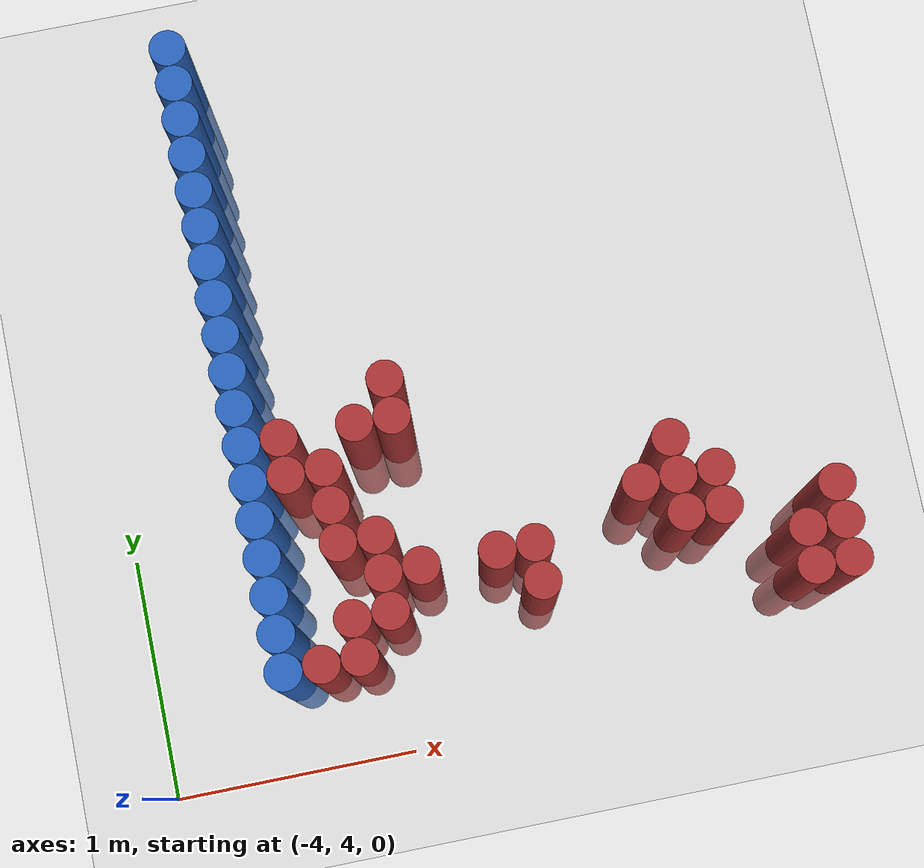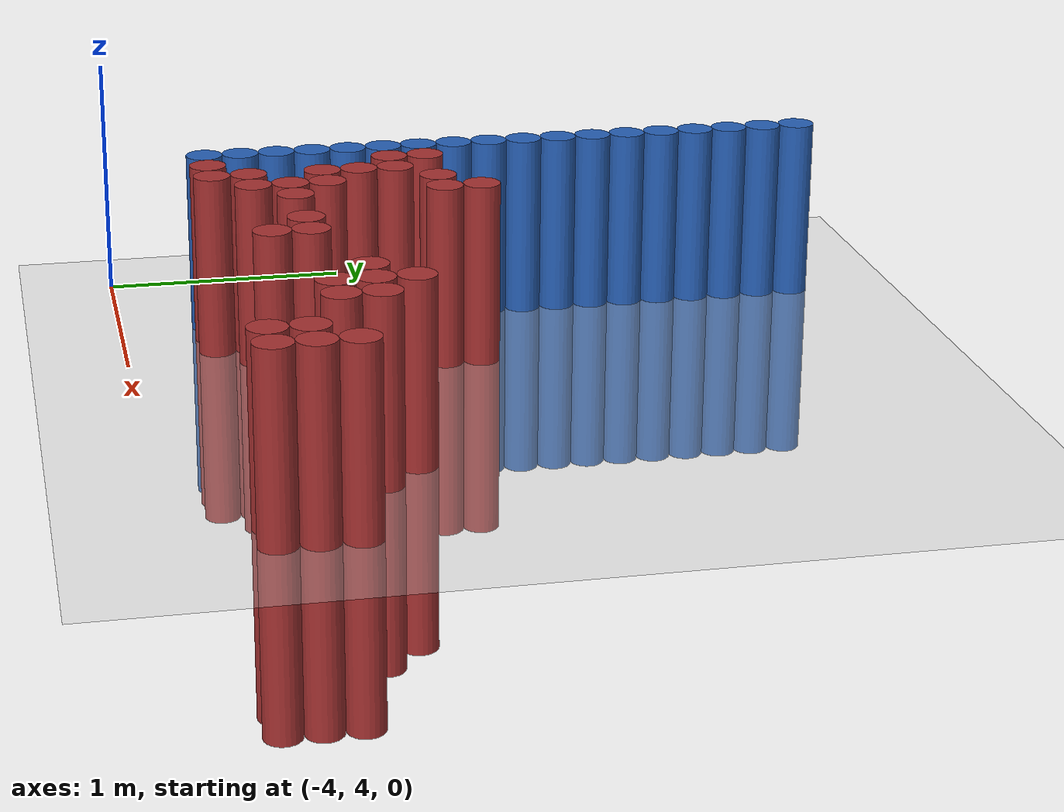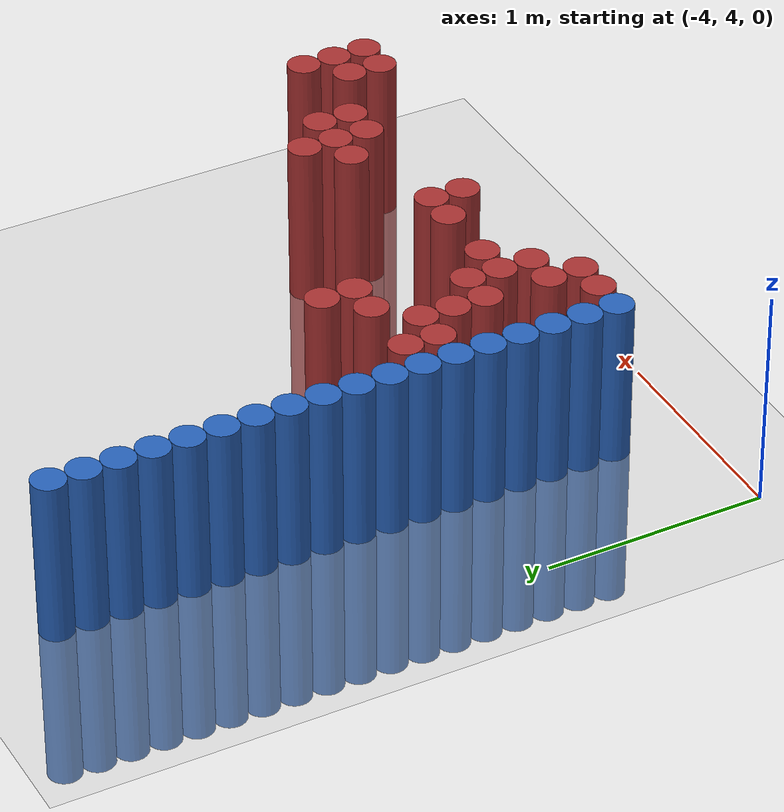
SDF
<sdf version="1.6">
 <world name="default">
  <model name="ground_plane">
   <static>1</static>
   <link name="link">
    <collision name="collision">
     <geometry><plane><normal>0 0 1</normal><size>100 100</size></plane></geometry>
     <surface><friction><ode><mu>100</mu><mu2>50</mu2></ode></friction></surface>
    </collision>
    <visual name="visual">
     <cast_shadows>0</cast_shadows>
     <geometry><plane><normal>0 0 1</normal><size>100 100</size></plane></geometry>
     <material>
      <script><uri>file://media/materials/scripts/gazebo.material</uri><name>Gazebo/Grey</name></script>
     </material>
    </visual>
   </link>
  </model>
  <model name="unit_cylinder_175">
   <static>1</static>
   <pose>-3.425000 4.525000 0.000000 0.000000 0.000000 0.000000</pose>
   <link name="link">
    <inertial>
     <mass>1</mass>
     <inertia><ixx>0.145833</ixx><ixy>0</ixy><ixz>0</ixz><iyy>0.145833</iyy><iyz>0</iyz><izz>0.125</izz></inertia>
    </inertial>
    <collision name="collision">
     <geometry><cylinder><radius>0.075000</radius><length>1.5</length></cylinder></geometry>
    </collision>
    <visual name="visual">
     <geometry><cylinder><radius>0.075000</radius><length>1.5</length></cylinder></geometry>
     <material>
      <ambient>0.152000 0.379000 0.720000 1</ambient>
      <diffuse>0.152000 0.379000 0.720000 1</diffuse>
     </material>
     <material>
      <script><name>Gazebo/Grey</name><uri>file://media/materials/scripts/gazebo.material</uri></script>
     </material>
    </visual>
   </link>
  </model>
  <model name="unit_cylinder_177">
   <static>1</static>
   <pose>-3.425000 4.675000 0.000000 0.000000 0.000000 0.000000</pose>
   <link name="link">
    <inertial>
     <mass>1</mass>
     <inertia><ixx>0.145833</ixx><ixy>0</ixy><ixz>0</ixz><iyy>0.145833</iyy><iyz>0</iyz><izz>0.125</izz></inertia>
    </inertial>
    <collision name="collision">
     <geometry><cylinder><radius>0.075000</radius><length>1.5</length></cylinder></geometry>
    </collision>
    <visual name="visual">
     <geometry><cylinder><radius>0.075000</radius><length>1.5</length></cylinder></geometry>
     <material>
      <ambient>0.152000 0.379000 0.720000 1</ambient>
      <diffuse>0.152000 0.379000 0.720000 1</diffuse>
     </material>
     <material>
      <script><name>Gazebo/Grey</name><uri>file://media/materials/scripts/gazebo.material</uri></script>
     </material>
    </visual>
   </link>
  </model>
  <model name="unit_cylinder_179">
   <static>1</static>
   <pose>-3.425000 4.825000 0.000000 0.000000 0.000000 0.000000</pose>
   <link name="link">
    <inertial>
     <mass>1</mass>
     <inertia><ixx>0.145833</ixx><ixy>0</ixy><ixz>0</ixz><iyy>0.145833</iyy><iyz>0</iyz><izz>0.125</izz></inertia>
    </inertial>
    <collision name="collision">
     <geometry><cylinder><radius>0.075000</radius><length>1.5</length></cylinder></geometry>
    </collision>
    <visual name="visual">
     <geometry><cylinder><radius>0.075000</radius><length>1.5</length></cylinder></geometry>
     <material>
      <ambient>0.152000 0.379000 0.720000 1</ambient>
      <diffuse>0.152000 0.379000 0.720000 1</diffuse>
     </material>
     <material>
      <script><name>Gazebo/Grey</name><uri>file://media/materials/scripts/gazebo.material</uri></script>
     </material>
    </visual>
   </link>
  </model>
  <model name="unit_cylinder_181">
   <static>1</static>
   <pose>-3.425000 4.975000 0.000000 0.000000 0.000000 0.000000</pose>
   <link name="link">
    <inertial>
     <mass>1</mass>
     <inertia><ixx>0.145833</ixx><ixy>0</ixy><ixz>0</ixz><iyy>0.145833</iyy><iyz>0</iyz><izz>0.125</izz></inertia>
    </inertial>
    <collision name="collision">
     <geometry><cylinder><radius>0.075000</radius><length>1.5</length></cylinder></geometry>
    </collision>
    <visual name="visual">
     <geometry><cylinder><radius>0.075000</radius><length>1.5</length></cylinder></geometry>
     <material>
      <ambient>0.152000 0.379000 0.720000 1</ambient>
      <diffuse>0.152000 0.379000 0.720000 1</diffuse>
     </material>
     <material>
      <script><name>Gazebo/Grey</name><uri>file://media/materials/scripts/gazebo.material</uri></script>
     </material>
    </visual>
   </link>
  </model>
  <model name="unit_cylinder_183">
   <static>1</static>
   <pose>-3.425000 5.125000 0.000000 0.000000 0.000000 0.000000</pose>
   <link name="link">
    <inertial>
     <mass>1</mass>
     <inertia><ixx>0.145833</ixx><ixy>0</ixy><ixz>0</ixz><iyy>0.145833</iyy><iyz>0</iyz><izz>0.125</izz></inertia>
    </inertial>
    <collision name="collision">
     <geometry><cylinder><radius>0.075000</radius><length>1.5</length></cylinder></geometry>
    </collision>
    <visual name="visual">
     <geometry><cylinder><radius>0.075000</radius><length>1.5</length></cylinder></geometry>
     <material>
      <ambient>0.152000 0.379000 0.720000 1</ambient>
      <diffuse>0.152000 0.379000 0.720000 1</diffuse>
     </material>
     <material>
      <script><name>Gazebo/Grey</name><uri>file://media/materials/scripts/gazebo.material</uri></script>
     </material>
    </visual>
   </link>
  </model>
  <model name="unit_cylinder_185">
   <static>1</static>
   <pose>-3.425000 5.275000 0.000000 0.000000 0.000000 0.000000</pose>
   <link name="link">
    <inertial>
     <mass>1</mass>
     <inertia><ixx>0.145833</ixx><ixy>0</ixy><ixz>0</ixz><iyy>0.145833</iyy><iyz>0</iyz><izz>0.125</izz></inertia>
    </inertial>
    <collision name="collision">
     <geometry><cylinder><radius>0.075000</radius><length>1.5</length></cylinder></geometry>
    </collision>
    <visual name="visual">
     <geometry><cylinder><radius>0.075000</radius><length>1.5</length></cylinder></geometry>
     <material>
      <ambient>0.152000 0.379000 0.720000 1</ambient>
      <diffuse>0.152000 0.379000 0.720000 1</diffuse>
     </material>
     <material>
      <script><name>Gazebo/Grey</name><uri>file://media/materials/scripts/gazebo.material</uri></script>
     </material>
    </visual>
   </link>
  </model>
  <model name="unit_cylinder_187">
   <static>1</static>
   <pose>-3.425000 5.425000 0.000000 0.000000 0.000000 0.000000</pose>
   <link name="link">
    <inertial>
     <mass>1</mass>
     <inertia><ixx>0.145833</ixx><ixy>0</ixy><ixz>0</ixz><iyy>0.145833</iyy><iyz>0</iyz><izz>0.125</izz></inertia>
    </inertial>
    <collision name="collision">
     <geometry><cylinder><radius>0.075000</radius><length>1.5</length></cylinder></geometry>
    </collision>
    <visual name="visual">
     <geometry><cylinder><radius>0.075000</radius><length>1.5</length></cylinder></geometry>
     <material>
      <ambient>0.152000 0.379000 0.720000 1</ambient>
      <diffuse>0.152000 0.379000 0.720000 1</diffuse>
     </material>
     <material>
      <script><name>Gazebo/Grey</name><uri>file://media/materials/scripts/gazebo.material</uri></script>
     </material>
    </visual>
   </link>
  </model>
  <model name="unit_cylinder_189">
   <static>1</static>
   <pose>-3.425000 5.575000 0.000000 0.000000 0.000000 0.000000</pose>
   <link name="link">
    <inertial>
     <mass>1</mass>
     <inertia><ixx>0.145833</ixx><ixy>0</ixy><ixz>0</ixz><iyy>0.145833</iyy><iyz>0</iyz><izz>0.125</izz></inertia>
    </inertial>
    <collision name="collision">
     <geometry><cylinder><radius>0.075000</radius><length>1.5</length></cylinder></geometry>
    </collision>
    <visual name="visual">
     <geometry><cylinder><radius>0.075000</radius><length>1.5</length></cylinder></geometry>
     <material>
      <ambient>0.152000 0.379000 0.720000 1</ambient>
      <diffuse>0.152000 0.379000 0.720000 1</diffuse>
     </material>
     <material>
      <script><name>Gazebo/Grey</name><uri>file://media/materials/scripts/gazebo.material</uri></script>
     </material>
    </visual>
   </link>
  </model>
  <model name="unit_cylinder_191">
   <static>1</static>
   <pose>-3.425000 5.725000 0.000000 0.000000 0.000000 0.000000</pose>
   <link name="link">
    <inertial>
     <mass>1</mass>
     <inertia><ixx>0.145833</ixx><ixy>0</ixy><ixz>0</ixz><iyy>0.145833</iyy><iyz>0</iyz><izz>0.125</izz></inertia>
    </inertial>
    <collision name="collision">
     <geometry><cylinder><radius>0.075000</radius><length>1.5</length></cylinder></geometry>
    </collision>
    <visual name="visual">
     <geometry><cylinder><radius>0.075000</radius><length>1.5</length></cylinder></geometry>
     <material>
      <ambient>0.152000 0.379000 0.720000 1</ambient>
      <diffuse>0.152000 0.379000 0.720000 1</diffuse>
     </material>
     <material>
      <script><name>Gazebo/Grey</name><uri>file://media/materials/scripts/gazebo.material</uri></script>
     </material>
    </visual>
   </link>
  </model>
  <model name="unit_cylinder_193">
   <static>1</static>
   <pose>-3.425000 5.875000 0.000000 0.000000 0.000000 0.000000</pose>
   <link name="link">
    <inertial>
     <mass>1</mass>
     <inertia><ixx>0.145833</ixx><ixy>0</ixy><ixz>0</ixz><iyy>0.145833</iyy><iyz>0</iyz><izz>0.125</izz></inertia>
    </inertial>
    <collision name="collision">
     <geometry><cylinder><radius>0.075000</radius><length>1.5</length></cylinder></geometry>
    </collision>
    <visual name="visual">
     <geometry><cylinder><radius>0.075000</radius><length>1.5</length></cylinder></geometry>
     <material>
      <ambient>0.152000 0.379000 0.720000 1</ambient>
      <diffuse>0.152000 0.379000 0.720000 1</diffuse>
     </material>
     <material>
      <script><name>Gazebo/Grey</name><uri>file://media/materials/scripts/gazebo.material</uri></script>
     </material>
    </visual>
   </link>
  </model>
  <model name="unit_cylinder_195">
   <static>1</static>
   <pose>-3.425000 6.025000 0.000000 0.000000 0.000000 0.000000</pose>
   <link name="link">
    <inertial>
     <mass>1</mass>
     <inertia><ixx>0.145833</ixx><ixy>0</ixy><ixz>0</ixz><iyy>0.145833</iyy><iyz>0</iyz><izz>0.125</izz></inertia>
    </inertial>
    <collision name="collision">
     <geometry><cylinder><radius>0.075000</radius><length>1.5</length></cylinder></geometry>
    </collision>
    <visual name="visual">
     <geometry><cylinder><radius>0.075000</radius><length>1.5</length></cylinder></geometry>
     <material>
      <ambient>0.152000 0.379000 0.720000 1</ambient>
      <diffuse>0.152000 0.379000 0.720000 1</diffuse>
     </material>
     <material>
      <script><name>Gazebo/Grey</name><uri>file://media/materials/scripts/gazebo.material</uri></script>
     </material>
    </visual>
   </link>
  </model>
  <model name="unit_cylinder_197">
   <static>1</static>
   <pose>-3.425000 6.175000 0.000000 0.000000 0.000000 0.000000</pose>
   <link name="link">
    <inertial>
     <mass>1</mass>
     <inertia><ixx>0.145833</ixx><ixy>0</ixy><ixz>0</ixz><iyy>0.145833</iyy><iyz>0</iyz><izz>0.125</izz></inertia>
    </inertial>
    <collision name="collision">
     <geometry><cylinder><radius>0.075000</radius><length>1.5</length></cylinder></geometry>
    </collision>
    <visual name="visual">
     <geometry><cylinder><radius>0.075000</radius><length>1.5</length></cylinder></geometry>
     <material>
      <ambient>0.152000 0.379000 0.720000 1</ambient>
      <diffuse>0.152000 0.379000 0.720000 1</diffuse>
     </material>
     <material>
      <script><name>Gazebo/Grey</name><uri>file://media/materials/scripts/gazebo.material</uri></script>
     </material>
    </visual>
   </link>
  </model>
  <model name="unit_cylinder_199">
   <static>1</static>
   <pose>-3.425000 6.325000 0.000000 0.000000 0.000000 0.000000</pose>
   <link name="link">
    <inertial>
     <mass>1</mass>
     <inertia><ixx>0.145833</ixx><ixy>0</ixy><ixz>0</ixz><iyy>0.145833</iyy><iyz>0</iyz><izz>0.125</izz></inertia>
    </inertial>
    <collision name="collision">
     <geometry><cylinder><radius>0.075000</radius><length>1.5</length></cylinder></geometry>
    </collision>
    <visual name="visual">
     <geometry><cylinder><radius>0.075000</radius><length>1.5</length></cylinder></geometry>
     <material>
      <ambient>0.152000 0.379000 0.720000 1</ambient>
      <diffuse>0.152000 0.379000 0.720000 1</diffuse>
     </material>
     <material>
      <script><name>Gazebo/Grey</name><uri>file://media/materials/scripts/gazebo.material</uri></script>
     </material>
    </visual>
   </link>
  </model>
  <model name="unit_cylinder_201">
   <static>1</static>
   <pose>-3.425000 6.475000 0.000000 0.000000 0.000000 0.000000</pose>
   <link name="link">
    <inertial>
     <mass>1</mass>
     <inertia><ixx>0.145833</ixx><ixy>0</ixy><ixz>0</ixz><iyy>0.145833</iyy><iyz>0</iyz><izz>0.125</izz></inertia>
    </inertial>
    <collision name="collision">
     <geometry><cylinder><radius>0.075000</radius><length>1.5</length></cylinder></geometry>
    </collision>
    <visual name="visual">
     <geometry><cylinder><radius>0.075000</radius><length>1.5</length></cylinder></geometry>
     <material>
      <ambient>0.152000 0.379000 0.720000 1</ambient>
      <diffuse>0.152000 0.379000 0.720000 1</diffuse>
     </material>
     <material>
      <script><name>Gazebo/Grey</name><uri>file://media/materials/scripts/gazebo.material</uri></script>
     </material>
    </visual>
   </link>
  </model>
  <model name="unit_cylinder_203">
   <static>1</static>
   <pose>-3.425000 6.625000 0.000000 0.000000 0.000000 0.000000</pose>
   <link name="link">
    <inertial>
     <mass>1</mass>
     <inertia><ixx>0.145833</ixx><ixy>0</ixy><ixz>0</ixz><iyy>0.145833</iyy><iyz>0</iyz><izz>0.125</izz></inertia>
    </inertial>
    <collision name="collision">
     <geometry><cylinder><radius>0.075000</radius><length>1.5</length></cylinder></geometry>
    </collision>
    <visual name="visual">
     <geometry><cylinder><radius>0.075000</radius><length>1.5</length></cylinder></geometry>
     <material>
      <ambient>0.152000 0.379000 0.720000 1</ambient>
      <diffuse>0.152000 0.379000 0.720000 1</diffuse>
     </material>
     <material>
      <script><name>Gazebo/Grey</name><uri>file://media/materials/scripts/gazebo.material</uri></script>
     </material>
    </visual>
   </link>
  </model>
  <model name="unit_cylinder_205">
   <static>1</static>
   <pose>-3.425000 6.775000 0.000000 0.000000 0.000000 0.000000</pose>
   <link name="link">
    <inertial>
     <mass>1</mass>
     <inertia><ixx>0.145833</ixx><ixy>0</ixy><ixz>0</ixz><iyy>0.145833</iyy><iyz>0</iyz><izz>0.125</izz></inertia>
    </inertial>
    <collision name="collision">
     <geometry><cylinder><radius>0.075000</radius><length>1.5</length></cylinder></geometry>
    </collision>
    <visual name="visual">
     <geometry><cylinder><radius>0.075000</radius><length>1.5</length></cylinder></geometry>
     <material>
      <ambient>0.152000 0.379000 0.720000 1</ambient>
      <diffuse>0.152000 0.379000 0.720000 1</diffuse>
     </material>
     <material>
      <script><name>Gazebo/Grey</name><uri>file://media/materials/scripts/gazebo.material</uri></script>
     </material>
    </visual>
   </link>
  </model>
  <model name="unit_cylinder_207">
   <static>1</static>
   <pose>-3.425000 6.925000 0.000000 0.000000 0.000000 0.000000</pose>
   <link name="link">
    <inertial>
     <mass>1</mass>
     <inertia><ixx>0.145833</ixx><ixy>0</ixy><ixz>0</ixz><iyy>0.145833</iyy><iyz>0</iyz><izz>0.125</izz></inertia>
    </inertial>
    <collision name="collision">
     <geometry><cylinder><radius>0.075000</radius><length>1.5</length></cylinder></geometry>
    </collision>
    <visual name="visual">
     <geometry><cylinder><radius>0.075000</radius><length>1.5</length></cylinder></geometry>
     <material>
      <ambient>0.152000 0.379000 0.720000 1</ambient>
      <diffuse>0.152000 0.379000 0.720000 1</diffuse>
     </material>
     <material>
      <script><name>Gazebo/Grey</name><uri>file://media/materials/scripts/gazebo.material</uri></script>
     </material>
    </visual>
   </link>
  </model>
  <model name="unit_cylinder_250">
   <static>1</static>
   <pose>-3.425000 4.375000 0.000000 0.000000 0.000000 0.000000</pose>
   <link name="link">
    <inertial>
     <mass>1</mass>
     <inertia><ixx>0.145833</ixx><ixy>0</ixy><ixz>0</ixz><iyy>0.145833</iyy><iyz>0</iyz><izz>0.125</izz></inertia>
    </inertial>
    <collision name="collision">
     <geometry><cylinder><radius>0.075000</radius><length>1.5</length></cylinder></geometry>
    </collision>
    <visual name="visual">
     <geometry><cylinder><radius>0.075000</radius><length>1.5</length></cylinder></geometry>
     <material>
      <ambient>0.152000 0.379000 0.720000 1</ambient>
      <diffuse>0.152000 0.379000 0.720000 1</diffuse>
     </material>
     <material>
      <script><name>Gazebo/Grey</name><uri>file://media/materials/scripts/gazebo.material</uri></script>
     </material>
    </visual>
   </link>
  </model>
  <model name="unit_cylinder_251">
   <static>1</static>
   <pose>-3.425000 4.525000 0.000000 0.000000 0.000000 0.000000</pose>
   <link name="link">
    <inertial>
     <mass>1</mass>
     <inertia><ixx>0.145833</ixx><ixy>0</ixy><ixz>0</ixz><iyy>0.145833</iyy><iyz>0</iyz><izz>0.125</izz></inertia>
    </inertial>
    <collision name="collision">
     <geometry><cylinder><radius>0.075000</radius><length>1.5</length></cylinder></geometry>
    </collision>
    <visual name="visual">
     <geometry><cylinder><radius>0.075000</radius><length>1.5</length></cylinder></geometry>
     <material>
      <ambient>0.152000 0.379000 0.720000 1</ambient>
      <diffuse>0.152000 0.379000 0.720000 1</diffuse>
     </material>
     <material>
      <script><name>Gazebo/Grey</name><uri>file://media/materials/scripts/gazebo.material</uri></script>
     </material>
    </visual>
   </link>
  </model>
  <model name="unit_cylinder_252">
   <static>1</static>
   <pose>-3.425000 4.675000 0.000000 0.000000 0.000000 0.000000</pose>
   <link name="link">
    <inertial>
     <mass>1</mass>
     <inertia><ixx>0.145833</ixx><ixy>0</ixy><ixz>0</ixz><iyy>0.145833</iyy><iyz>0</iyz><izz>0.125</izz></inertia>
    </inertial>
    <collision name="collision">
     <geometry><cylinder><radius>0.075000</radius><length>1.5</length></cylinder></geometry>
    </collision>
    <visual name="visual">
     <geometry><cylinder><radius>0.075000</radius><length>1.5</length></cylinder></geometry>
     <material>
      <ambient>0.152000 0.379000 0.720000 1</ambient>
      <diffuse>0.152000 0.379000 0.720000 1</diffuse>
     </material>
     <material>
      <script><name>Gazebo/Grey</name><uri>file://media/materials/scripts/gazebo.material</uri></script>
     </material>
    </visual>
   </link>
  </model>
  <model name="unit_cylinder_253">
   <static>1</static>
   <pose>-3.425000 4.825000 0.000000 0.000000 0.000000 0.000000</pose>
   <link name="link">
    <inertial>
     <mass>1</mass>
     <inertia><ixx>0.145833</ixx><ixy>0</ixy><ixz>0</ixz><iyy>0.145833</iyy><iyz>0</iyz><izz>0.125</izz></inertia>
    </inertial>
    <collision name="collision">
     <geometry><cylinder><radius>0.075000</radius><length>1.5</length></cylinder></geometry>
    </collision>
    <visual name="visual">
     <geometry><cylinder><radius>0.075000</radius><length>1.5</length></cylinder></geometry>
     <material>
      <ambient>0.152000 0.379000 0.720000 1</ambient>
      <diffuse>0.152000 0.379000 0.720000 1</diffuse>
     </material>
     <material>
      <script><name>Gazebo/Grey</name><uri>file://media/materials/scripts/gazebo.material</uri></script>
     </material>
    </visual>
   </link>
  </model>
  <model name="unit_cylinder_254">
   <static>1</static>
   <pose>-3.425000 4.975000 0.000000 0.000000 0.000000 0.000000</pose>
   <link name="link">
    <inertial>
     <mass>1</mass>
     <inertia><ixx>0.145833</ixx><ixy>0</ixy><ixz>0</ixz><iyy>0.145833</iyy><iyz>0</iyz><izz>0.125</izz></inertia>
    </inertial>
    <collision name="collision">
     <geometry><cylinder><radius>0.075000</radius><length>1.5</length></cylinder></geometry>
    </collision>
    <visual name="visual">
     <geometry><cylinder><radius>0.075000</radius><length>1.5</length></cylinder></geometry>
     <material>
      <ambient>0.152000 0.379000 0.720000 1</ambient>
      <diffuse>0.152000 0.379000 0.720000 1</diffuse>
     </material>
     <material>
      <script><name>Gazebo/Grey</name><uri>file://media/materials/scripts/gazebo.material</uri></script>
     </material>
    </visual>
   </link>
  </model>
  <model name="unit_cylinder_255">
   <static>1</static>
   <pose>-3.425000 5.125000 0.000000 0.000000 0.000000 0.000000</pose>
   <link name="link">
    <inertial>
     <mass>1</mass>
     <inertia><ixx>0.145833</ixx><ixy>0</ixy><ixz>0</ixz><iyy>0.145833</iyy><iyz>0</iyz><izz>0.125</izz></inertia>
    </inertial>
    <collision name="collision">
     <geometry><cylinder><radius>0.075000</radius><length>1.5</length></cylinder></geometry>
    </collision>
    <visual name="visual">
     <geometry><cylinder><radius>0.075000</radius><length>1.5</length></cylinder></geometry>
     <material>
      <ambient>0.152000 0.379000 0.720000 1</ambient>
      <diffuse>0.152000 0.379000 0.720000 1</diffuse>
     </material>
     <material>
      <script><name>Gazebo/Grey</name><uri>file://media/materials/scripts/gazebo.material</uri></script>
     </material>
    </visual>
   </link>
  </model>
  <model name="unit_cylinder_256">
   <static>1</static>
   <pose>-3.425000 5.275000 0.000000 0.000000 0.000000 0.000000</pose>
   <link name="link">
    <inertial>
     <mass>1</mass>
     <inertia><ixx>0.145833</ixx><ixy>0</ixy><ixz>0</ixz><iyy>0.145833</iyy><iyz>0</iyz><izz>0.125</izz></inertia>
    </inertial>
    <collision name="collision">
     <geometry><cylinder><radius>0.075000</radius><length>1.5</length></cylinder></geometry>
    </collision>
    <visual name="visual">
     <geometry><cylinder><radius>0.075000</radius><length>1.5</length></cylinder></geometry>
     <material>
      <ambient>0.152000 0.379000 0.720000 1</ambient>
      <diffuse>0.152000 0.379000 0.720000 1</diffuse>
     </material>
     <material>
      <script><name>Gazebo/Grey</name><uri>file://media/materials/scripts/gazebo.material</uri></script>
     </material>
    </visual>
   </link>
  </model>
  <model name="unit_cylinder_257">
   <static>1</static>
   <pose>-3.425000 5.425000 0.000000 0.000000 0.000000 0.000000</pose>
   <link name="link">
    <inertial>
     <mass>1</mass>
     <inertia><ixx>0.145833</ixx><ixy>0</ixy><ixz>0</ixz><iyy>0.145833</iyy><iyz>0</iyz><izz>0.125</izz></inertia>
    </inertial>
    <collision name="collision">
     <geometry><cylinder><radius>0.075000</radius><length>1.5</length></cylinder></geometry>
    </collision>
    <visual name="visual">
     <geometry><cylinder><radius>0.075000</radius><length>1.5</length></cylinder></geometry>
     <material>
      <ambient>0.152000 0.379000 0.720000 1</ambient>
      <diffuse>0.152000 0.379000 0.720000 1</diffuse>
     </material>
     <material>
      <script><name>Gazebo/Grey</name><uri>file://media/materials/scripts/gazebo.material</uri></script>
     </material>
    </visual>
   </link>
  </model>
  <model name="unit_cylinder_279">
   <static>1</static>
   <pose>-3.275000 4.375000 0.000000 0.000000 0.000000 0.000000</pose>
   <link name="link">
    <inertial>
     <mass>1</mass>
     <inertia><ixx>0.145833</ixx><ixy>0</ixy><ixz>0</ixz><iyy>0.145833</iyy><iyz>0</iyz><izz>0.125</izz></inertia>
    </inertial>
    <collision name="collision">
     <geometry><cylinder><radius>0.075000</radius><length>1.5</length></cylinder></geometry>
    </collision>
    <visual name="visual">
     <geometry><cylinder><radius>0.075000</radius><length>1.5</length></cylinder></geometry>
     <material>
      <ambient>0.648000 0.192000 0.192000 1</ambient>
      <diffuse>0.648000 0.192000 0.192000 1</diffuse>
     </material>
     <material>
      <script><name>Gazebo/Grey</name><uri>file://media/materials/scripts/gazebo.material</uri></script>
     </material>
    </visual>
   </link>
  </model>
  <model name="unit_cylinder_280">
   <static>1</static>
   <pose>-3.275000 5.125000 0.000000 0.000000 0.000000 0.000000</pose>
   <link name="link">
    <inertial>
     <mass>1</mass>
     <inertia><ixx>0.145833</ixx><ixy>0</ixy><ixz>0</ixz><iyy>0.145833</iyy><iyz>0</iyz><izz>0.125</izz></inertia>
    </inertial>
    <collision name="collision">
     <geometry><cylinder><radius>0.075000</radius><length>1.5</length></cylinder></geometry>
    </collision>
    <visual name="visual">
     <geometry><cylinder><radius>0.075000</radius><length>1.5</length></cylinder></geometry>
     <material>
      <ambient>0.648000 0.192000 0.192000 1</ambient>
      <diffuse>0.648000 0.192000 0.192000 1</diffuse>
     </material>
     <material>
      <script><name>Gazebo/Grey</name><uri>file://media/materials/scripts/gazebo.material</uri></script>
     </material>
    </visual>
   </link>
  </model>
  <model name="unit_cylinder_281">
   <static>1</static>
   <pose>-3.275000 5.275000 0.000000 0.000000 0.000000 0.000000</pose>
   <link name="link">
    <inertial>
     <mass>1</mass>
     <inertia><ixx>0.145833</ixx><ixy>0</ixy><ixz>0</ixz><iyy>0.145833</iyy><iyz>0</iyz><izz>0.125</izz></inertia>
    </inertial>
    <collision name="collision">
     <geometry><cylinder><radius>0.075000</radius><length>1.5</length></cylinder></geometry>
    </collision>
    <visual name="visual">
     <geometry><cylinder><radius>0.075000</radius><length>1.5</length></cylinder></geometry>
     <material>
      <ambient>0.648000 0.192000 0.192000 1</ambient>
      <diffuse>0.648000 0.192000 0.192000 1</diffuse>
     </material>
     <material>
      <script><name>Gazebo/Grey</name><uri>file://media/materials/scripts/gazebo.material</uri></script>
     </material>
    </visual>
   </link>
  </model>
  <model name="unit_cylinder_292">
   <static>1</static>
   <pose>-3.125000 4.375000 0.000000 0.000000 0.000000 0.000000</pose>
   <link name="link">
    <inertial>
     <mass>1</mass>
     <inertia><ixx>0.145833</ixx><ixy>0</ixy><ixz>0</ixz><iyy>0.145833</iyy><iyz>0</iyz><izz>0.125</izz></inertia>
    </inertial>
    <collision name="collision">
     <geometry><cylinder><radius>0.075000</radius><length>1.5</length></cylinder></geometry>
    </collision>
    <visual name="visual">
     <geometry><cylinder><radius>0.075000</radius><length>1.5</length></cylinder></geometry>
     <material>
      <ambient>0.648000 0.192000 0.192000 1</ambient>
      <diffuse>0.648000 0.192000 0.192000 1</diffuse>
     </material>
     <material>
      <script><name>Gazebo/Grey</name><uri>file://media/materials/scripts/gazebo.material</uri></script>
     </material>
    </visual>
   </link>
  </model>
  <model name="unit_cylinder_293">
   <static>1</static>
   <pose>-3.125000 4.525000 0.000000 0.000000 0.000000 0.000000</pose>
   <link name="link">
    <inertial>
     <mass>1</mass>
     <inertia><ixx>0.145833</ixx><ixy>0</ixy><ixz>0</ixz><iyy>0.145833</iyy><iyz>0</iyz><izz>0.125</izz></inertia>
    </inertial>
    <collision name="collision">
     <geometry><cylinder><radius>0.075000</radius><length>1.5</length></cylinder></geometry>
    </collision>
    <visual name="visual">
     <geometry><cylinder><radius>0.075000</radius><length>1.5</length></cylinder></geometry>
     <material>
      <ambient>0.648000 0.192000 0.192000 1</ambient>
      <diffuse>0.648000 0.192000 0.192000 1</diffuse>
     </material>
     <material>
      <script><name>Gazebo/Grey</name><uri>file://media/materials/scripts/gazebo.material</uri></script>
     </material>
    </visual>
   </link>
  </model>
  <model name="unit_cylinder_294">
   <static>1</static>
   <pose>-3.125000 4.825000 0.000000 0.000000 0.000000 0.000000</pose>
   <link name="link">
    <inertial>
     <mass>1</mass>
     <inertia><ixx>0.145833</ixx><ixy>0</ixy><ixz>0</ixz><iyy>0.145833</iyy><iyz>0</iyz><izz>0.125</izz></inertia>
    </inertial>
    <collision name="collision">
     <geometry><cylinder><radius>0.075000</radius><length>1.5</length></cylinder></geometry>
    </collision>
    <visual name="visual">
     <geometry><cylinder><radius>0.075000</radius><length>1.5</length></cylinder></geometry>
     <material>
      <ambient>0.648000 0.192000 0.192000 1</ambient>
      <diffuse>0.648000 0.192000 0.192000 1</diffuse>
     </material>
     <material>
      <script><name>Gazebo/Grey</name><uri>file://media/materials/scripts/gazebo.material</uri></script>
     </material>
    </visual>
   </link>
  </model>
  <model name="unit_cylinder_295">
   <static>1</static>
   <pose>-3.125000 4.975000 0.000000 0.000000 0.000000 0.000000</pose>
   <link name="link">
    <inertial>
     <mass>1</mass>
     <inertia><ixx>0.145833</ixx><ixy>0</ixy><ixz>0</ixz><iyy>0.145833</iyy><iyz>0</iyz><izz>0.125</izz></inertia>
    </inertial>
    <collision name="collision">
     <geometry><cylinder><radius>0.075000</radius><length>1.5</length></cylinder></geometry>
    </collision>
    <visual name="visual">
     <geometry><cylinder><radius>0.075000</radius><length>1.5</length></cylinder></geometry>
     <material>
      <ambient>0.648000 0.192000 0.192000 1</ambient>
      <diffuse>0.648000 0.192000 0.192000 1</diffuse>
     </material>
     <material>
      <script><name>Gazebo/Grey</name><uri>file://media/materials/scripts/gazebo.material</uri></script>
     </material>
    </visual>
   </link>
  </model>
  <model name="unit_cylinder_296">
   <static>1</static>
   <pose>-3.125000 5.125000 0.000000 0.000000 0.000000 0.000000</pose>
   <link name="link">
    <inertial>
     <mass>1</mass>
     <inertia><ixx>0.145833</ixx><ixy>0</ixy><ixz>0</ixz><iyy>0.145833</iyy><iyz>0</iyz><izz>0.125</izz></inertia>
    </inertial>
    <collision name="collision">
     <geometry><cylinder><radius>0.075000</radius><length>1.5</length></cylinder></geometry>
    </collision>
    <visual name="visual">
     <geometry><cylinder><radius>0.075000</radius><length>1.5</length></cylinder></geometry>
     <material>
      <ambient>0.648000 0.192000 0.192000 1</ambient>
      <diffuse>0.648000 0.192000 0.192000 1</diffuse>
     </material>
     <material>
      <script><name>Gazebo/Grey</name><uri>file://media/materials/scripts/gazebo.material</uri></script>
     </material>
    </visual>
   </link>
  </model>
  <model name="unit_cylinder_300">
   <static>1</static>
   <pose>-2.975000 4.525000 0.000000 0.000000 0.000000 0.000000</pose>
   <link name="link">
    <inertial>
     <mass>1</mass>
     <inertia><ixx>0.145833</ixx><ixy>0</ixy><ixz>0</ixz><iyy>0.145833</iyy><iyz>0</iyz><izz>0.125</izz></inertia>
    </inertial>
    <collision name="collision">
     <geometry><cylinder><radius>0.075000</radius><length>1.5</length></cylinder></geometry>
    </collision>
    <visual name="visual">
     <geometry><cylinder><radius>0.075000</radius><length>1.5</length></cylinder></geometry>
     <material>
      <ambient>0.648000 0.192000 0.192000 1</ambient>
      <diffuse>0.648000 0.192000 0.192000 1</diffuse>
     </material>
     <material>
      <script><name>Gazebo/Grey</name><uri>file://media/materials/scripts/gazebo.material</uri></script>
     </material>
    </visual>
   </link>
  </model>
  <model name="unit_cylinder_301">
   <static>1</static>
   <pose>-2.975000 4.675000 0.000000 0.000000 0.000000 0.000000</pose>
   <link name="link">
    <inertial>
     <mass>1</mass>
     <inertia><ixx>0.145833</ixx><ixy>0</ixy><ixz>0</ixz><iyy>0.145833</iyy><iyz>0</iyz><izz>0.125</izz></inertia>
    </inertial>
    <collision name="collision">
     <geometry><cylinder><radius>0.075000</radius><length>1.5</length></cylinder></geometry>
    </collision>
    <visual name="visual">
     <geometry><cylinder><radius>0.075000</radius><length>1.5</length></cylinder></geometry>
     <material>
      <ambient>0.648000 0.192000 0.192000 1</ambient>
      <diffuse>0.648000 0.192000 0.192000 1</diffuse>
     </material>
     <material>
      <script><name>Gazebo/Grey</name><uri>file://media/materials/scripts/gazebo.material</uri></script>
     </material>
    </visual>
   </link>
  </model>
  <model name="unit_cylinder_302">
   <static>1</static>
   <pose>-2.975000 4.825000 0.000000 0.000000 0.000000 0.000000</pose>
   <link name="link">
    <inertial>
     <mass>1</mass>
     <inertia><ixx>0.145833</ixx><ixy>0</ixy><ixz>0</ixz><iyy>0.145833</iyy><iyz>0</iyz><izz>0.125</izz></inertia>
    </inertial>
    <collision name="collision">
     <geometry><cylinder><radius>0.075000</radius><length>1.5</length></cylinder></geometry>
    </collision>
    <visual name="visual">
     <geometry><cylinder><radius>0.075000</radius><length>1.5</length></cylinder></geometry>
     <material>
      <ambient>0.648000 0.192000 0.192000 1</ambient>
      <diffuse>0.648000 0.192000 0.192000 1</diffuse>
     </material>
     <material>
      <script><name>Gazebo/Grey</name><uri>file://media/materials/scripts/gazebo.material</uri></script>
     </material>
    </visual>
   </link>
  </model>
  <model name="unit_cylinder_303">
   <static>1</static>
   <pose>-2.975000 5.275000 0.000000 0.000000 0.000000 0.000000</pose>
   <link name="link">
    <inertial>
     <mass>1</mass>
     <inertia><ixx>0.145833</ixx><ixy>0</ixy><ixz>0</ixz><iyy>0.145833</iyy><iyz>0</iyz><izz>0.125</izz></inertia>
    </inertial>
    <collision name="collision">
     <geometry><cylinder><radius>0.075000</radius><length>1.5</length></cylinder></geometry>
    </collision>
    <visual name="visual">
     <geometry><cylinder><radius>0.075000</radius><length>1.5</length></cylinder></geometry>
     <material>
      <ambient>0.648000 0.192000 0.192000 1</ambient>
      <diffuse>0.648000 0.192000 0.192000 1</diffuse>
     </material>
     <material>
      <script><name>Gazebo/Grey</name><uri>file://media/materials/scripts/gazebo.material</uri></script>
     </material>
    </visual>
   </link>
  </model>
  <model name="unit_cylinder_307">
   <static>1</static>
   <pose>-2.825000 4.675000 0.000000 0.000000 0.000000 0.000000</pose>
   <link name="link">
    <inertial>
     <mass>1</mass>
     <inertia><ixx>0.145833</ixx><ixy>0</ixy><ixz>0</ixz><iyy>0.145833</iyy><iyz>0</iyz><izz>0.125</izz></inertia>
    </inertial>
    <collision name="collision">
     <geometry><cylinder><radius>0.075000</radius><length>1.5</length></cylinder></geometry>
    </collision>
    <visual name="visual">
     <geometry><cylinder><radius>0.075000</radius><length>1.5</length></cylinder></geometry>
     <material>
      <ambient>0.648000 0.192000 0.192000 1</ambient>
      <diffuse>0.648000 0.192000 0.192000 1</diffuse>
     </material>
     <material>
      <script><name>Gazebo/Grey</name><uri>file://media/materials/scripts/gazebo.material</uri></script>
     </material>
    </visual>
   </link>
  </model>
  <model name="unit_cylinder_308">
   <static>1</static>
   <pose>-2.825000 5.275000 0.000000 0.000000 0.000000 0.000000</pose>
   <link name="link">
    <inertial>
     <mass>1</mass>
     <inertia><ixx>0.145833</ixx><ixy>0</ixy><ixz>0</ixz><iyy>0.145833</iyy><iyz>0</iyz><izz>0.125</izz></inertia>
    </inertial>
    <collision name="collision">
     <geometry><cylinder><radius>0.075000</radius><length>1.5</length></cylinder></geometry>
    </collision>
    <visual name="visual">
     <geometry><cylinder><radius>0.075000</radius><length>1.5</length></cylinder></geometry>
     <material>
      <ambient>0.648000 0.192000 0.192000 1</ambient>
      <diffuse>0.648000 0.192000 0.192000 1</diffuse>
     </material>
     <material>
      <script><name>Gazebo/Grey</name><uri>file://media/materials/scripts/gazebo.material</uri></script>
     </material>
    </visual>
   </link>
  </model>
  <model name="unit_cylinder_309">
   <static>1</static>
   <pose>-2.825000 5.425000 0.000000 0.000000 0.000000 0.000000</pose>
   <link name="link">
    <inertial>
     <mass>1</mass>
     <inertia><ixx>0.145833</ixx><ixy>0</ixy><ixz>0</ixz><iyy>0.145833</iyy><iyz>0</iyz><izz>0.125</izz></inertia>
    </inertial>
    <collision name="collision">
     <geometry><cylinder><radius>0.075000</radius><length>1.5</length></cylinder></geometry>
    </collision>
    <visual name="visual">
     <geometry><cylinder><radius>0.075000</radius><length>1.5</length></cylinder></geometry>
     <material>
      <ambient>0.648000 0.192000 0.192000 1</ambient>
      <diffuse>0.648000 0.192000 0.192000 1</diffuse>
     </material>
     <material>
      <script><name>Gazebo/Grey</name><uri>file://media/materials/scripts/gazebo.material</uri></script>
     </material>
    </visual>
   </link>
  </model>
  <model name="unit_cylinder_317">
   <static>1</static>
   <pose>-2.525000 4.675000 0.000000 0.000000 0.000000 0.000000</pose>
   <link name="link">
    <inertial>
     <mass>1</mass>
     <inertia><ixx>0.145833</ixx><ixy>0</ixy><ixz>0</ixz><iyy>0.145833</iyy><iyz>0</iyz><izz>0.125</izz></inertia>
    </inertial>
    <collision name="collision">
     <geometry><cylinder><radius>0.075000</radius><length>1.5</length></cylinder></geometry>
    </collision>
    <visual name="visual">
     <geometry><cylinder><radius>0.075000</radius><length>1.5</length></cylinder></geometry>
     <material>
      <ambient>0.648000 0.192000 0.192000 1</ambient>
      <diffuse>0.648000 0.192000 0.192000 1</diffuse>
     </material>
     <material>
      <script><name>Gazebo/Grey</name><uri>file://media/materials/scripts/gazebo.material</uri></script>
     </material>
    </visual>
   </link>
  </model>
  <model name="unit_cylinder_320">
   <static>1</static>
   <pose>-2.375000 4.525000 0.000000 0.000000 0.000000 0.000000</pose>
   <link name="link">
    <inertial>
     <mass>1</mass>
     <inertia><ixx>0.145833</ixx><ixy>0</ixy><ixz>0</ixz><iyy>0.145833</iyy><iyz>0</iyz><izz>0.125</izz></inertia>
    </inertial>
    <collision name="collision">
     <geometry><cylinder><radius>0.075000</radius><length>1.5</length></cylinder></geometry>
    </collision>
    <visual name="visual">
     <geometry><cylinder><radius>0.075000</radius><length>1.5</length></cylinder></geometry>
     <material>
      <ambient>0.648000 0.192000 0.192000 1</ambient>
      <diffuse>0.648000 0.192000 0.192000 1</diffuse>
     </material>
     <material>
      <script><name>Gazebo/Grey</name><uri>file://media/materials/scripts/gazebo.material</uri></script>
     </material>
    </visual>
   </link>
  </model>
  <model name="unit_cylinder_321">
   <static>1</static>
   <pose>-2.375000 4.675000 0.000000 0.000000 0.000000 0.000000</pose>
   <link name="link">
    <inertial>
     <mass>1</mass>
     <inertia><ixx>0.145833</ixx><ixy>0</ixy><ixz>0</ixz><iyy>0.145833</iyy><iyz>0</iyz><izz>0.125</izz></inertia>
    </inertial>
    <collision name="collision">
     <geometry><cylinder><radius>0.075000</radius><length>1.5</length></cylinder></geometry>
    </collision>
    <visual name="visual">
     <geometry><cylinder><radius>0.075000</radius><length>1.5</length></cylinder></geometry>
     <material>
      <ambient>0.648000 0.192000 0.192000 1</ambient>
      <diffuse>0.648000 0.192000 0.192000 1</diffuse>
     </material>
     <material>
      <script><name>Gazebo/Grey</name><uri>file://media/materials/scripts/gazebo.material</uri></script>
     </material>
    </visual>
   </link>
  </model>
  <model name="unit_cylinder_332">
   <static>1</static>
   <pose>-1.925000 4.825000 0.000000 0.000000 0.000000 0.000000</pose>
   <link name="link">
    <inertial>
     <mass>1</mass>
     <inertia><ixx>0.145833</ixx><ixy>0</ixy><ixz>0</ixz><iyy>0.145833</iyy><iyz>0</iyz><izz>0.125</izz></inertia>
    </inertial>
    <collision name="collision">
     <geometry><cylinder><radius>0.075000</radius><length>1.5</length></cylinder></geometry>
    </collision>
    <visual name="visual">
     <geometry><cylinder><radius>0.075000</radius><length>1.5</length></cylinder></geometry>
     <material>
      <ambient>0.648000 0.192000 0.192000 1</ambient>
      <diffuse>0.648000 0.192000 0.192000 1</diffuse>
     </material>
     <material>
      <script><name>Gazebo/Grey</name><uri>file://media/materials/scripts/gazebo.material</uri></script>
     </material>
    </visual>
   </link>
  </model>
  <model name="unit_cylinder_338">
   <static>1</static>
   <pose>-1.775000 4.675000 0.000000 0.000000 0.000000 0.000000</pose>
   <link name="link">
    <inertial>
     <mass>1</mass>
     <inertia><ixx>0.145833</ixx><ixy>0</ixy><ixz>0</ixz><iyy>0.145833</iyy><iyz>0</iyz><izz>0.125</izz></inertia>
    </inertial>
    <collision name="collision">
     <geometry><cylinder><radius>0.075000</radius><length>1.5</length></cylinder></geometry>
    </collision>
    <visual name="visual">
     <geometry><cylinder><radius>0.075000</radius><length>1.5</length></cylinder></geometry>
     <material>
      <ambient>0.648000 0.192000 0.192000 1</ambient>
      <diffuse>0.648000 0.192000 0.192000 1</diffuse>
     </material>
     <material>
      <script><name>Gazebo/Grey</name><uri>file://media/materials/scripts/gazebo.material</uri></script>
     </material>
    </visual>
   </link>
  </model>
  <model name="unit_cylinder_339">
   <static>1</static>
   <pose>-1.775000 4.825000 0.000000 0.000000 0.000000 0.000000</pose>
   <link name="link">
    <inertial>
     <mass>1</mass>
     <inertia><ixx>0.145833</ixx><ixy>0</ixy><ixz>0</ixz><iyy>0.145833</iyy><iyz>0</iyz><izz>0.125</izz></inertia>
    </inertial>
    <collision name="collision">
     <geometry><cylinder><radius>0.075000</radius><length>1.5</length></cylinder></geometry>
    </collision>
    <visual name="visual">
     <geometry><cylinder><radius>0.075000</radius><length>1.5</length></cylinder></geometry>
     <material>
      <ambient>0.648000 0.192000 0.192000 1</ambient>
      <diffuse>0.648000 0.192000 0.192000 1</diffuse>
     </material>
     <material>
      <script><name>Gazebo/Grey</name><uri>file://media/materials/scripts/gazebo.material</uri></script>
     </material>
    </visual>
   </link>
  </model>
  <model name="unit_cylinder_340">
   <static>1</static>
   <pose>-1.775000 4.975000 0.000000 0.000000 0.000000 0.000000</pose>
   <link name="link">
    <inertial>
     <mass>1</mass>
     <inertia><ixx>0.145833</ixx><ixy>0</ixy><ixz>0</ixz><iyy>0.145833</iyy><iyz>0</iyz><izz>0.125</izz></inertia>
    </inertial>
    <collision name="collision">
     <geometry><cylinder><radius>0.075000</radius><length>1.5</length></cylinder></geometry>
    </collision>
    <visual name="visual">
     <geometry><cylinder><radius>0.075000</radius><length>1.5</length></cylinder></geometry>
     <material>
      <ambient>0.648000 0.192000 0.192000 1</ambient>
      <diffuse>0.648000 0.192000 0.192000 1</diffuse>
     </material>
     <material>
      <script><name>Gazebo/Grey</name><uri>file://media/materials/scripts/gazebo.material</uri></script>
     </material>
    </visual>
   </link>
  </model>
  <model name="unit_cylinder_343">
   <static>1</static>
   <pose>-1.625000 4.675000 0.000000 0.000000 0.000000 0.000000</pose>
   <link name="link">
    <inertial>
     <mass>1</mass>
     <inertia><ixx>0.145833</ixx><ixy>0</ixy><ixz>0</ixz><iyy>0.145833</iyy><iyz>0</iyz><izz>0.125</izz></inertia>
    </inertial>
    <collision name="collision">
     <geometry><cylinder><radius>0.075000</radius><length>1.5</length></cylinder></geometry>
    </collision>
    <visual name="visual">
     <geometry><cylinder><radius>0.075000</radius><length>1.5</length></cylinder></geometry>
     <material>
      <ambient>0.648000 0.192000 0.192000 1</ambient>
      <diffuse>0.648000 0.192000 0.192000 1</diffuse>
     </material>
     <material>
      <script><name>Gazebo/Grey</name><uri>file://media/materials/scripts/gazebo.material</uri></script>
     </material>
    </visual>
   </link>
  </model>
  <model name="unit_cylinder_344">
   <static>1</static>
   <pose>-1.625000 4.825000 0.000000 0.000000 0.000000 0.000000</pose>
   <link name="link">
    <inertial>
     <mass>1</mass>
     <inertia><ixx>0.145833</ixx><ixy>0</ixy><ixz>0</ixz><iyy>0.145833</iyy><iyz>0</iyz><izz>0.125</izz></inertia>
    </inertial>
    <collision name="collision">
     <geometry><cylinder><radius>0.075000</radius><length>1.5</length></cylinder></geometry>
    </collision>
    <visual name="visual">
     <geometry><cylinder><radius>0.075000</radius><length>1.5</length></cylinder></geometry>
     <material>
      <ambient>0.648000 0.192000 0.192000 1</ambient>
      <diffuse>0.648000 0.192000 0.192000 1</diffuse>
     </material>
     <material>
      <script><name>Gazebo/Grey</name><uri>file://media/materials/scripts/gazebo.material</uri></script>
     </material>
    </visual>
   </link>
  </model>
  <model name="unit_cylinder_355">
   <static>1</static>
   <pose>-1.325000 4.375000 0.000000 0.000000 0.000000 0.000000</pose>
   <link name="link">
    <inertial>
     <mass>1</mass>
     <inertia><ixx>0.145833</ixx><ixy>0</ixy><ixz>0</ixz><iyy>0.145833</iyy><iyz>0</iyz><izz>0.125</izz></inertia>
    </inertial>
    <collision name="collision">
     <geometry><cylinder><radius>0.075000</radius><length>1.5</length></cylinder></geometry>
    </collision>
    <visual name="visual">
     <geometry><cylinder><radius>0.075000</radius><length>1.5</length></cylinder></geometry>
     <material>
      <ambient>0.648000 0.192000 0.192000 1</ambient>
      <diffuse>0.648000 0.192000 0.192000 1</diffuse>
     </material>
     <material>
      <script><name>Gazebo/Grey</name><uri>file://media/materials/scripts/gazebo.material</uri></script>
     </material>
    </visual>
   </link>
  </model>
  <model name="unit_cylinder_356">
   <static>1</static>
   <pose>-1.325000 4.525000 0.000000 0.000000 0.000000 0.000000</pose>
   <link name="link">
    <inertial>
     <mass>1</mass>
     <inertia><ixx>0.145833</ixx><ixy>0</ixy><ixz>0</ixz><iyy>0.145833</iyy><iyz>0</iyz><izz>0.125</izz></inertia>
    </inertial>
    <collision name="collision">
     <geometry><cylinder><radius>0.075000</radius><length>1.5</length></cylinder></geometry>
    </collision>
    <visual name="visual">
     <geometry><cylinder><radius>0.075000</radius><length>1.5</length></cylinder></geometry>
     <material>
      <ambient>0.648000 0.192000 0.192000 1</ambient>
      <diffuse>0.648000 0.192000 0.192000 1</diffuse>
     </material>
     <material>
      <script><name>Gazebo/Grey</name><uri>file://media/materials/scripts/gazebo.material</uri></script>
     </material>
    </visual>
   </link>
  </model>
  <model name="unit_cylinder_369">
   <static>1</static>
   <pose>-1.175000 4.375000 0.000000 0.000000 0.000000 0.000000</pose>
   <link name="link">
    <inertial>
     <mass>1</mass>
     <inertia><ixx>0.145833</ixx><ixy>0</ixy><ixz>0</ixz><iyy>0.145833</iyy><iyz>0</iyz><izz>0.125</izz></inertia>
    </inertial>
    <collision name="collision">
     <geometry><cylinder><radius>0.075000</radius><length>1.5</length></cylinder></geometry>
    </collision>
    <visual name="visual">
     <geometry><cylinder><radius>0.075000</radius><length>1.5</length></cylinder></geometry>
     <material>
      <ambient>0.648000 0.192000 0.192000 1</ambient>
      <diffuse>0.648000 0.192000 0.192000 1</diffuse>
     </material>
     <material>
      <script><name>Gazebo/Grey</name><uri>file://media/materials/scripts/gazebo.material</uri></script>
     </material>
    </visual>
   </link>
  </model>
  <model name="unit_cylinder_370">
   <static>1</static>
   <pose>-1.175000 4.525000 0.000000 0.000000 0.000000 0.000000</pose>
   <link name="link">
    <inertial>
     <mass>1</mass>
     <inertia><ixx>0.145833</ixx><ixy>0</ixy><ixz>0</ixz><iyy>0.145833</iyy><iyz>0</iyz><izz>0.125</izz></inertia>
    </inertial>
    <collision name="collision">
     <geometry><cylinder><radius>0.075000</radius><length>1.5</length></cylinder></geometry>
    </collision>
    <visual name="visual">
     <geometry><cylinder><radius>0.075000</radius><length>1.5</length></cylinder></geometry>
     <material>
      <ambient>0.648000 0.192000 0.192000 1</ambient>
      <diffuse>0.648000 0.192000 0.192000 1</diffuse>
     </material>
     <material>
      <script><name>Gazebo/Grey</name><uri>file://media/materials/scripts/gazebo.material</uri></script>
     </material>
    </visual>
   </link>
  </model>
  <model name="unit_cylinder_371">
   <static>1</static>
   <pose>-1.175000 4.675000 0.000000 0.000000 0.000000 0.000000</pose>
   <link name="link">
    <inertial>
     <mass>1</mass>
     <inertia><ixx>0.145833</ixx><ixy>0</ixy><ixz>0</ixz><iyy>0.145833</iyy><iyz>0</iyz><izz>0.125</izz></inertia>
    </inertial>
    <collision name="collision">
     <geometry><cylinder><radius>0.075000</radius><length>1.5</length></cylinder></geometry>
    </collision>
    <visual name="visual">
     <geometry><cylinder><radius>0.075000</radius><length>1.5</length></cylinder></geometry>
     <material>
      <ambient>0.648000 0.192000 0.192000 1</ambient>
      <diffuse>0.648000 0.192000 0.192000 1</diffuse>
     </material>
     <material>
      <script><name>Gazebo/Grey</name><uri>file://media/materials/scripts/gazebo.material</uri></script>
     </material>
    </visual>
   </link>
  </model>
 </world>
</sdf>
